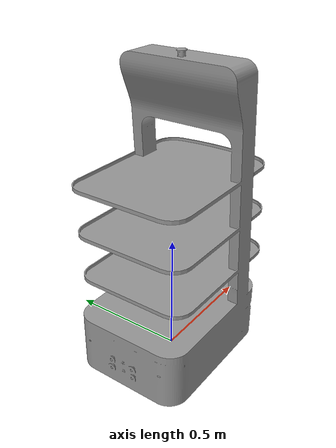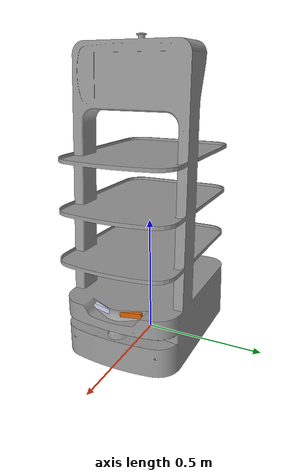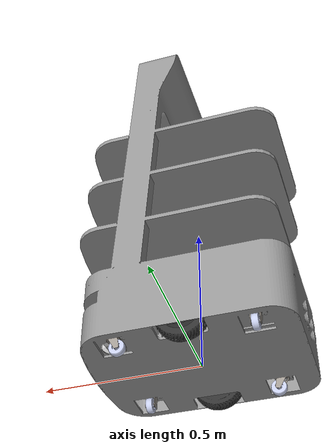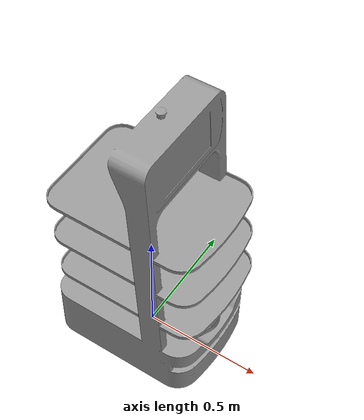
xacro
<?xml version="1.0"?>
<robot xmlns:xacro="http://www.ros.org/wiki/xacro" name="d_bot">

    <xacro:include filename="$(find d_bot_description)/urdf/caster_transmission.xacro" />
    <xacro:include filename="$(find d_bot_description)/urdf/caster_holder_transmission.xacro" />
    <xacro:include filename="$(find d_bot_description)/urdf/robot.gazebo.xacro" />

    <xacro:macro name="default_inertial" params="mass">
        <inertial>
            <mass value="${mass}" />
            <inertia ixx="1.0" ixy="0.0" ixz="0.0" iyy="1.0" iyz="0.0" izz="1.0" />
        </inertial>
    </xacro:macro>
  <link name="base_footprint"/>

  <joint
    name="base_joint"
    type="fixed">
    <origin
      xyz="0.0 0.0 0.0"
      rpy="0.0 0 0" />
    <parent
      link="base_footprint" />
    <child
      link="base_link" />
    <axis
      xyz="0 0 0" />
  </joint>

  <!-- base_link -->
  <link
    name="base_link">
    <xacro:default_inertial mass="10"/>
    <visual>
      <origin
        xyz="0 0 0"
        rpy="0 0 0" />
      <geometry>
        <mesh
          filename="file:///$(find d_bot_description)/meshes/base_link.STL" />
      </geometry>
      <material
        name="">
        <color
          rgba="0.6 0.6 0.6 1" />
      </material>
    </visual>
    <collision>
      <origin
        xyz="-0.05 0 0.18"
        rpy="0 0 0" />
      <geometry>
        <box size="0.525 0.46 0.1"/>
      </geometry>
    </collision>
    <collision>
      <origin
        xyz="0.03 0 0.4"
        rpy="0 0 0" />
      <geometry>
        <box size="0.64 0.49 0.01"/>
      </geometry>
    </collision>
    <collision>
      <origin
        xyz="0.02 0 0.595"
        rpy="0 0 0" />
      <geometry>
        <box size="0.64 0.49 0.01"/>
      </geometry>
    </collision>
    <collision>
      <origin
        xyz="0.01 0 0.79"
        rpy="0 0 0" />
      <geometry>
        <box size="0.64 0.49 0.01"/>
      </geometry>
    </collision>
  </link>

  <!-- fl_caster_holder_link -->
  <link
    name="fl_caster_holder_link">
    <xacro:default_inertial mass="10"/>
    <visual>
      <origin
        xyz="0 0 0"
        rpy="0 0 0" />
      <geometry>
        <mesh
          filename="file:///$(find d_bot_description)/meshes/fl_caster_holder_link.STL" />
      </geometry>
      <material
        name="">
        <color
          rgba="0.647058823529412 0.619607843137255 0.588235294117647 1" />
      </material>
    </visual>
    <collision>
      <origin
        xyz="0 0 0"
        rpy="0 0 0" />
      <geometry>
        <mesh
          filename="file:///$(find d_bot_description)/meshes/fl_caster_holder_link.STL" />
      </geometry>
    </collision>
  </link>
  <joint
    name="fl_caster_holder_joint"
    type="continuous">
    <origin
      xyz="0.215225039750229 0.1771 -0.0145388598876857"
      rpy="-1.5707963267949 0 0" />
    <parent
      link="base_link" />
    <child
      link="fl_caster_holder_link" />
    <axis
      xyz="0 1 0" />
  </joint>

  <!-- fl_caster_wheel_link -->
  <link
    name="fl_caster_wheel_link">
    <xacro:default_inertial mass="10"/>
    <visual>
      <origin
        xyz="0 0 0"
        rpy="0 0 0" />
      <geometry>
        <mesh
          filename="file:///$(find d_bot_description)/meshes/fl_caster_wheel_link.STL" />
      </geometry>
      <material
        name="">
        <color
          rgba="0.792156862745098 0.819607843137255 0.933333333333333 1" />
      </material>
    </visual>
    <collision>
      <origin
        xyz="0 0 0"
        rpy="0 1.5714 0" />
      <geometry>
        <cylinder length="0.02" radius="0.02525"/>
      </geometry>
    </collision>
  </link>
  <joint
    name="fl_caster_wheel_joint"
    type="continuous">
    <origin
      xyz="-0.0126379418294896 -0.00814162274155295 0"
      rpy="0.152452190017873 -1.5707963267949 0" />
    <parent
      link="fl_caster_holder_link" />
    <child
      link="fl_caster_wheel_link" />
    <axis
      xyz="1 0 0" />
  </joint>

  <!-- fr_caster_holder_link -->
  <link
    name="fr_caster_holder_link">
    <xacro:default_inertial mass="10"/>
    <visual>
      <origin
        xyz="0 0 0"
        rpy="0 0 0" />
      <geometry>
        <mesh
          filename="file:///$(find d_bot_description)/meshes/fr_caster_holder_link.STL" />
      </geometry>
      <material
        name="">
        <color
          rgba="0.647058823529412 0.619607843137255 0.588235294117647 1" />
      </material>
    </visual>
    <collision>
      <origin
        xyz="0 0 0"
        rpy="0 0 0" />
      <geometry>
        <mesh
          filename="file:///$(find d_bot_description)/meshes/fr_caster_holder_link.STL" />
      </geometry>
    </collision>
  </link>
  <joint
    name="fr_caster_holder_joint"
    type="continuous">
    <origin
      xyz="0.214825039750222 -0.177099999999992 -0.0145388598876857"
      rpy="-1.57079632679486 0 -1.5707963267949" />
    <parent
      link="base_link" />
    <child
      link="fr_caster_holder_link" />
    <axis
      xyz="0 1 0" />
  </joint>

  <!-- fr_caster_wheel_link -->
  <link
    name="fr_caster_wheel_link">
    <xacro:default_inertial mass="10"/>
    <visual>
      <origin
        xyz="0 0 0"
        rpy="0 0 0" />
      <geometry>
        <mesh
          filename="file:///$(find d_bot_description)/meshes/fr_caster_wheel_link.STL" />
      </geometry>
      <material
        name="">
        <color
          rgba="0.792156862745098 0.819607843137255 0.933333333333333 1" />
      </material>
    </visual>
    <collision>
      <origin
        xyz="0 0 0"
        rpy="0 1.5714 0" />
      <geometry>
        <cylinder length="0.02" radius="0.02525"/>
      </geometry>
    </collision>
  </link>
  <joint
    name="fr_caster_wheel_joint"
    type="continuous">
    <origin
      xyz="-0.0126379418294887 -0.00814162274155716 0"
      rpy="0.233129638410502 -1.5707963267949 0" />
    <parent
      link="fr_caster_holder_link" />
    <child
      link="fr_caster_wheel_link" />
    <axis
      xyz="1 0 0" />
  </joint>

  <!-- bl_caster_holder_link -->
  <link
    name="bl_caster_holder_link">
    <xacro:default_inertial mass="10"/>
    <visual>
      <origin
        xyz="0 0 0"
        rpy="0 0 0" />
      <geometry>
        <mesh
          filename="file:///$(find d_bot_description)/meshes/bl_caster_holder_link.STL" />
      </geometry>
      <material
        name="">
        <color
          rgba="0.647058823529412 0.619607843137255 0.588235294117647 1" />
      </material>
    </visual>
    <collision>
      <origin
        xyz="0 0 0"
        rpy="0 0 0" />
      <geometry>
        <mesh
          filename="file:///$(find d_bot_description)/meshes/bl_caster_holder_link.STL" />
      </geometry>
    </collision>
  </link>
  <joint
    name="bl_caster_holder_joint"
    type="continuous">
    <origin
      xyz="-0.20600856677299 0.177100000000002 -0.0145388598877"
      rpy="-1.57079632679486 0 -1.5707963267949" />
    <parent
      link="base_link" />
    <child
      link="bl_caster_holder_link" />
    <axis
      xyz="0 1 0" />
  </joint>

  <!-- bl_caster_wheel_link -->
  <link
    name="bl_caster_wheel_link">
    <xacro:default_inertial mass="10"/>
    <visual>
      <origin
        xyz="0 0 0"
        rpy="0 0 0" />
      <geometry>
        <mesh
          filename="file:///$(find d_bot_description)/meshes/bl_caster_wheel_link.STL" />
      </geometry>
      <material
        name="">
        <color
          rgba="0.792156862745098 0.819607843137255 0.933333333333333 1" />
      </material>
    </visual>
    <collision>
      <origin
        xyz="0 0 0"
        rpy="0 1.5714 0" />
      <geometry>
        <cylinder length="0.02" radius="0.02525"/>
      </geometry>
    </collision>
  </link>
  <joint
    name="bl_caster_wheel_joint"
    type="continuous">
    <origin
      xyz="-0.0126379418294879 -0.00814162274155106 0"
      rpy="1.43676256222585 -1.5707963267949 0" />
    <parent
      link="bl_caster_holder_link" />
    <child
      link="bl_caster_wheel_link" />
    <axis
      xyz="1 0 0" />
  </joint>

  <!-- br_caster_holder_link -->
  <link
    name="br_caster_holder_link">
    <xacro:default_inertial mass="10"/>
    <visual>
      <origin
        xyz="0 0 0"
        rpy="0 0 0" />
      <geometry>
        <mesh
          filename="file:///$(find d_bot_description)/meshes/br_caster_holder_link.STL" />
      </geometry>
      <material
        name="">
        <color
          rgba="0.647058823529412 0.619607843137255 0.588235294117647 1" />
      </material>
    </visual>
    <collision>
      <origin
        xyz="0 0 0"
        rpy="0 0 0" />
      <geometry>
        <mesh
          filename="file:///$(find d_bot_description)/meshes/br_caster_holder_link.STL" />
      </geometry>
    </collision>
  </link>
  <joint
    name="br_caster_holder_joint"
    type="continuous">
    <origin
      xyz="-0.206408566772991 -0.177100000000006 -0.014538859887695"
      rpy="-1.57079632679489 0 -3.08172138398829" />
    <parent
      link="base_link" />
    <child
      link="br_caster_holder_link" />
    <axis
      xyz="0 1 0" />
  </joint>

  <!-- br_caster_wheel_link -->
  <link
    name="br_caster_wheel_link">
    <xacro:default_inertial mass="10"/>
    <visual>
      <origin
        xyz="0 0 0"
        rpy="0 0 0" />
      <geometry>
        <mesh
          filename="file:///$(find d_bot_description)/meshes/br_caster_wheel_link.STL" />
      </geometry>
      <material
        name="">
        <color
          rgba="0.792156862745098 0.819607843137255 0.933333333333333 1" />
      </material>
    </visual>
    <collision>
      <origin
        xyz="0 0 0"
        rpy="0 1.5714 0" />
      <geometry>
        <cylinder length="0.02" radius="0.02525"/>
      </geometry>
    </collision>
  </link>
  <joint
    name="br_caster_wheel_joint"
    type="continuous">
    <origin
      xyz="-0.0126379418294893 -0.00814162274154767 0"
      rpy="0 -1.5707963267949 0" />
    <parent
      link="br_caster_holder_link" />
    <child
      link="br_caster_wheel_link" />
    <axis
      xyz="1 0 0" />
  </joint>

  <!-- drive_left_link -->
  <link
    name="drive_left_link">
    <xacro:default_inertial mass="200"/>
    <visual>
      <origin
        xyz="0 0 0"
        rpy="0 0 0" />
      <geometry>
        <mesh
          filename="file:///$(find d_bot_description)/meshes/drive_left_link.STL" />
      </geometry>
      <material
        name="">
        <color
          rgba="0.2 0.2 0.2 1" />
      </material>
    </visual>
    <collision>
      <origin
        xyz="0.05 0 0"
        rpy="0 1.5714 0" />
      <geometry>
        <cylinder length="0.05" radius="0.0825"/>
      </geometry>
    </collision>
  </link>
  <joint
    name="drive_left_joint"
    type="continuous">
    <origin
      xyz="-7.34417430403589E-06 0.254110517 0.050"
      rpy="-0.10097 0 -1.5708" />
    <parent
      link="base_link" />
    <child
      link="drive_left_link" />
    <axis
      xyz="-1 0 0" />
  </joint>

  <!-- drive_right_link -->
  <link
    name="drive_right_link">
    <xacro:default_inertial mass="200"/>
    <visual>
      <origin
        xyz="0 0 0"
        rpy="0 0 0" />
      <geometry>
        <mesh
          filename="file:///$(find d_bot_description)/meshes/drive_right_link.STL" />
      </geometry>
      <material
        name="">
        <color
          rgba="0.2 0.2 0.2 1" />
      </material>
    </visual>
    <collision>
      <origin
        xyz="0.05 0 0"
        rpy="0 1.5714 0" />
      <geometry>
      <cylinder length="0.05" radius="0.0825"/>
      </geometry>
    </collision>
  </link>
  <joint
    name="drive_right_joint"
    type="continuous">
    <origin
      xyz="7.34417430392487E-06 -0.254110517 0.050"
      rpy="-0.10097 0 1.5708" />
    <parent
      link="base_link" />
    <child
      link="drive_right_link" />
    <axis
      xyz="1 0 0" />
  </joint>

<!-- front_lidar_link -->

<link
    name="lidar_link">
    <inertial>
      <origin
        xyz="0.279194541394812 -1.49381448597552E-05 0.122298548059415"
        rpy="0 0 0" />
      <mass
        value="0.165382751635992" />
      <inertia
        ixx="7.88651836105336E-05"
        ixy="4.84717640920877E-08"
        ixz="2.18479443959794E-06"
        iyy="7.51902914938724E-05"
        iyz="2.88601572510436E-08"
        izz="0.000109946753058708" />
    </inertial>
    <visual>
      <origin
        xyz="-0.28 0.0 -0.13"
        rpy="0 0 0" />
      <geometry>
        <mesh
          filename="file:///$(find d_bot_description)/meshes/lidar_link.STL" />
      </geometry>
      <material
        name="">
        <color
          rgba="0.752941176470588 0.752941176470588 0.752941176470588 0.4" />
      </material>
    </visual>
    <collision>
      <origin
        xyz="-0.28 0.0 -0.13"
        rpy="0 0 0" />
      <geometry>
        <mesh
          filename="file:///$(find d_bot_description)/meshes/lidar_link.STL" />
      </geometry>
    </collision>
  </link>
  <joint
    name="lidar_joint"
    type="fixed">
    <origin
        xyz="0.2825 0.0 0.13"
        rpy="0 0 0" />
    <parent
      link="base_link" />
    <child
      link="lidar_link" />
    <axis
      xyz="0 0 0" />
  </joint>

  <!-- left_rs_link -->
  <link name="left_camera">
    <xacro:default_inertial mass="1"/>
    <visual>
      <origin xyz="0 0 0" rpy="1.5708 0 1.5708" />
      <geometry>
        <mesh
          filename="file:///$(find d_bot_description)/meshes/left_rs_link.STL" />
      </geometry>
    </visual>
    <collision>
      <origin xyz="0 0 0" rpy="1.5708 0 1.5708" />
      <geometry>
        <mesh
          filename="file:///$(find d_bot_description)/meshes/left_rs_link.STL" />
      </geometry>
    </collision>
  </link>

  <link name="left_camera_frame" />

  <joint
    name="left_rs_joint"
    type="fixed">
    <origin
      xyz="0.29154 0.063516 0.2198"
      rpy="0 0 0.2181662" />
    <parent
      link="base_link" />
    <child
      link="left_camera" />
    <axis
      xyz="0 0 0"/>
  </joint>

  <joint name="left_camera_frame_joint"
    type="fixed">
    <origin
      xyz="0 0 0"
      rpy="-1.5708 0 -1.5708" />
    <parent
      link="left_camera" />
    <child
      link="left_camera_frame" />
    <axis
      xyz="0 0 0"/>
  </joint>

  <!-- right_rs_link -->
  <link
    name="right_camera">
    <xacro:default_inertial mass="1"/>
    <visual>
      <origin
        xyz="0 0 0"
        rpy="1.5708 0 1.5708" />
      <geometry>
        <mesh
          filename="file:///$(find d_bot_description)/meshes/right_rs_link.STL" />
      </geometry>
      <material
        name="">
        <color
          rgba="0.792156862745098 0.819607843137255 0.933333333333333 1" />
      </material>
    </visual>
    <collision>
      <origin
        xyz="0 0 0"
        rpy="1.5708 0 1.5708" />
      <geometry>
        <mesh
          filename="file:///$(find d_bot_description)/meshes/right_rs_link.STL" />
      </geometry>
    </collision>
  </link>
  <joint
    name="right_rs_joint"
    type="fixed">
    <origin
      xyz="0.291429416827163 -0.0630797813490415 0.2198"
      rpy="0 0 -0.2181662" />
    <parent
      link="base_link" />
    <child
      link="right_camera" />
    <axis
      xyz="0 0 0" />
  </joint>

  <link name="right_camera_frame" />

  <joint name="right_camera_frame_joint"
    type="fixed">
    <origin
      xyz="0 0 0"
      rpy="-1.5708 0 -1.5708" />
    <parent
      link="right_camera" />
    <child
      link="right_camera_frame" />
    <axis
      xyz="0 0 0"/>
  </joint>

  <!-- imu_plugin -->
  <link name="imu_link">
    <xacro:default_inertial mass="2"/>
    <visual name="">
      <origin xyz="0.0 0.0 0.0" rpy="0.0 0.0 0.0"/>
      <geometry>
        <box size="0.05 0.05 0.05"/>
      </geometry>
      <material name="">
        <color rgba="1.0 0.0 0.0 1.0"/>
        <texture filename=""/>
      </material>
    </visual>
    <collision>
      <origin xyz="0.0 0.0 0.0" rpy="0.0 0.0 0.0"/>
      <geometry>
        <box size="0.05 0.05 0.05"/>
      </geometry>
    </collision>
  </link>

  <joint name="imu_joint" type="fixed">
    <axis xyz="0 0 0" />
    <origin xyz="0 0 0.26" rpy="0 0 0"/>
    <parent link="base_link"/>
    <child link="imu_link"/>
  </joint>

  <!-- for left drive wheel -->

  <!-- This block provides the simulator (Gazebo) with information on a few additional
  physical properties. See http://gazebosim.org/tutorials/?tut=ros_urdf for more-->
  <gazebo reference="drive_wheel_left">
      <mu1 value="200.0"/>
      <mu2 value="100.0"/>
      <kp value="10000000.0" />
      <kd value="1.0" />
      <material>Gazebo/Grey</material>
  </gazebo>

  <!-- This block connects the wheel joint to an actuator (motor), which informs both
  simulation and visualization of the robot -->
  <transmission name="drive_wheel_left_trans">
      <type>transmission_interface/SimpleTransmission</type>
      <actuator name="drive_wheel_left_motor">
          <mechanicalReduction>1</mechanicalReduction>
      </actuator>
      <joint name="drive_left_joint">
          <hardwareInterface>hardware_interface/VelocityJointInterface</hardwareInterface>
      </joint>
  </transmission>

  <!-- for right drive wheel -->

  <!-- This block provides the simulator (Gazebo) with information on a few additional
  physical properties. See http://gazebosim.org/tutorials/?tut=ros_urdf for more-->
  <gazebo reference="drive_wheel_right">
      <mu1 value="200.0"/>
      <mu2 value="100.0"/>
      <kp value="10000000.0" />
      <kd value="1.0" />
      <material>Gazebo/Grey</material>
  </gazebo>

  <!-- This block connects the wheel joint to an actuator (motor), which informs both
  simulation and visualization of the robot -->
  <transmission name="drive_wheel_right_trans">
      <type>transmission_interface/SimpleTransmission</type>
      <actuator name="drive_wheel_right_motor">
          <mechanicalReduction>1</mechanicalReduction>
      </actuator>
      <joint name="drive_right_joint">
          <hardwareInterface>hardware_interface/VelocityJointInterface</hardwareInterface>
      </joint>
  </transmission>

  <!-- Gazebo plugin for ROS Control -->
  <gazebo>

      <plugin name="gazebo_ros_control" filename="libgazebo_ros_control.so">
          <robotNamespace>/</robotNamespace>
      </plugin>

  </gazebo>

</robot>
